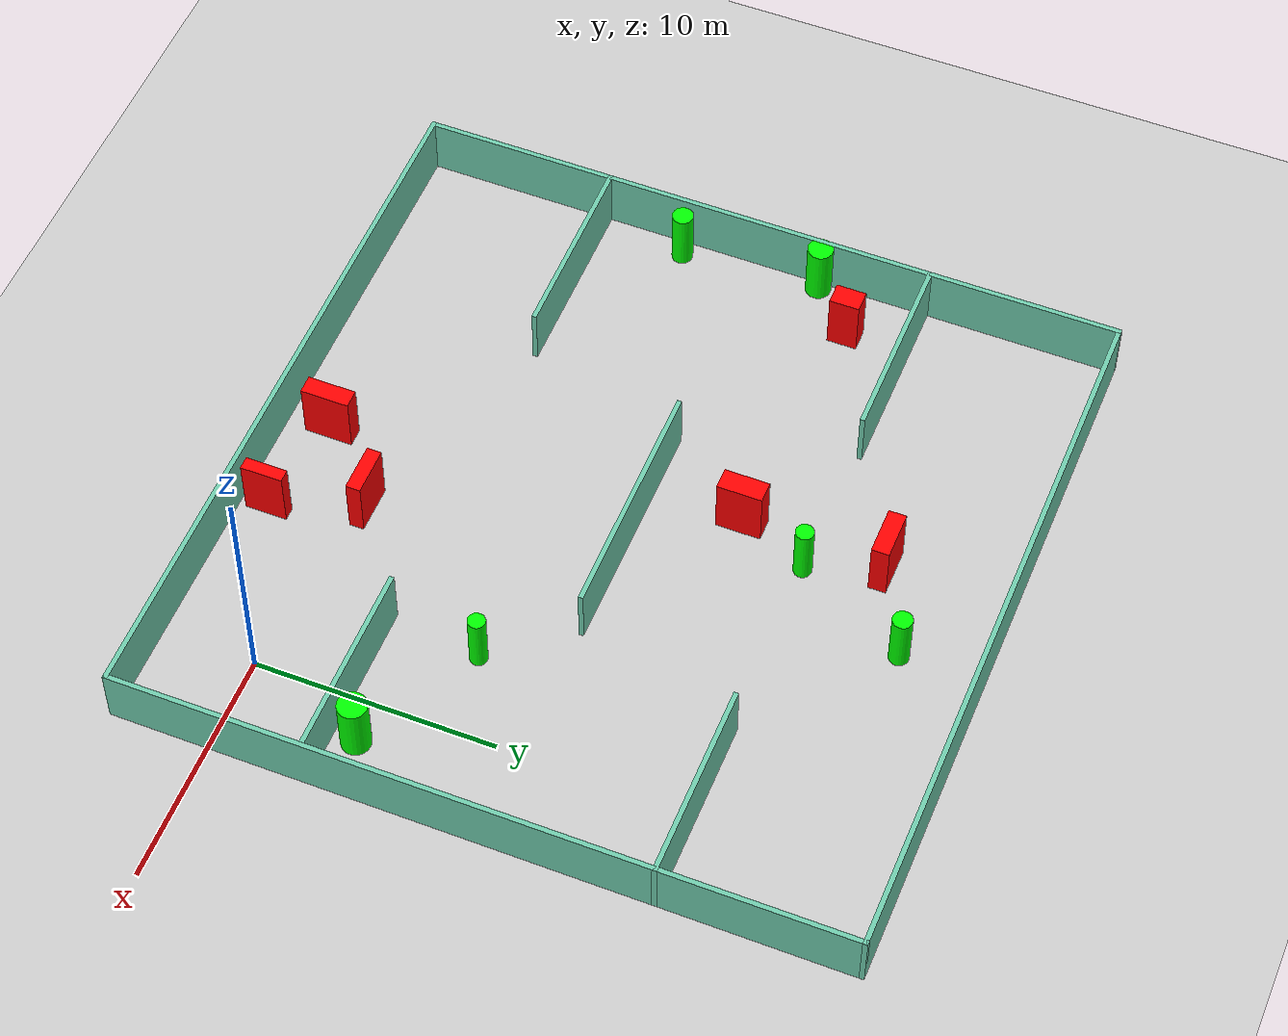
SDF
<sdf version="1.7">
 <world name="default">
  <light name="sun" type="directional">
   <pose>0 0 10 0 -0 0</pose>
   <diffuse>0.8 0.8 0.8 1</diffuse>
   <specular>0.2 0.2 0.2 1</specular>
   <attenuation>
    <range>1000</range>
    <constant>0.9</constant>
    <linear>0.01</linear>
    <quadratic>0.001</quadratic>
   </attenuation>
   <direction>-0.5 0.1 -0.9</direction>
   <spot><inner_angle>0</inner_angle><outer_angle>0</outer_angle><falloff>0</falloff></spot>
  </light>
  <model name="ground_plane">
   <static>1</static>
   <link name="link">
    <collision name="collision">
     <geometry><plane><normal>0 0 1</normal><size>100 100</size></plane></geometry>
     <surface>
      <contact><collide_bitmask>65535</collide_bitmask></contact>
      <friction><ode><mu>100</mu><mu2>50</mu2></ode></friction>
     </surface>
    </collision>
    <visual name="visual">
     <cast_shadows>0</cast_shadows>
     <geometry><plane><normal>0 0 1</normal><size>100 100</size></plane></geometry>
     <material>
      <script><uri>file://media/materials/scripts/gazebo.material</uri><name>Gazebo/Grey</name></script>
     </material>
    </visual>
   </link>
  </model>
  <gravity>0 0 -9.8</gravity>
  <magnetic_field>6e-06 2.3e-05 -4.2e-05</magnetic_field>
  <atmosphere type="adiabatic"/>
  <physics type="ode">
   <max_step_size>0.001</max_step_size>
   <real_time_factor>1</real_time_factor>
   <real_time_update_rate>1000</real_time_update_rate>
  </physics>
  <scene><ambient>0.4 0.4 0.4 1</ambient><background>0.7 0.7 0.7 1</background><shadows>1</shadows></scene>
  <spherical_coordinates>
   <surface_model>EARTH_WGS84</surface_model>
   <latitude_deg>0</latitude_deg>
   <longitude_deg>0</longitude_deg>
   <elevation>0</elevation>
   <heading_deg>0</heading_deg>
  </spherical_coordinates>
  <model name="my_base_walls">
   <link name="Wall_10">
    <collision name="Wall_10_Collision">
     <geometry><box><size>8.2 0.2 2.5</size></box></geometry>
     <pose>0 0 1.25 0 -0 0</pose>
    </collision>
    <visual name="Wall_10_Visual">
     <pose>0 0 1.25 0 -0 0</pose>
     <geometry><box><size>8.2 0.2 2.5</size></box></geometry>
     <material>
      <script><uri>file://media/materials/scripts/gazebo.material</uri><name>Gazebo/Grey</name></script>
      <ambient>0.435294 0.796078 0.67451 1</ambient>
     </material>
     <meta><layer>0</layer></meta>
    </visual>
    <pose>-11 -7 0 0 -0 0</pose>
   </link>
   <link name="Wall_12">
    <collision name="Wall_12_Collision">
     <geometry><box><size>8.2 0.2 2.5</size></box></geometry>
     <pose>0 0 1.25 0 -0 0</pose>
    </collision>
    <visual name="Wall_12_Visual">
     <pose>0 0 1.25 0 -0 0</pose>
     <geometry><box><size>8.2 0.2 2.5</size></box></geometry>
     <material>
      <script><uri>file://media/materials/scripts/gazebo.material</uri><name>Gazebo/Grey</name></script>
      <ambient>0.435294 0.796078 0.67451 1</ambient>
     </material>
     <meta><layer>0</layer></meta>
    </visual>
    <pose>-11 7 0 0 -0 0</pose>
   </link>
   <link name="Wall_14">
    <collision name="Wall_14_Collision">
     <geometry><box><size>8.2 0.2 2.5</size></box></geometry>
     <pose>0 0 1.25 0 -0 0</pose>
    </collision>
    <visual name="Wall_14_Visual">
     <pose>0 0 1.25 0 -0 0</pose>
     <geometry><box><size>8.2 0.2 2.5</size></box></geometry>
     <material>
      <script><uri>file://media/materials/scripts/gazebo.material</uri><name>Gazebo/Grey</name></script>
      <ambient>0.435294 0.796078 0.67451 1</ambient>
     </material>
     <meta><layer>0</layer></meta>
    </visual>
    <pose>11 7 0 0 -0 3.14159</pose>
   </link>
   <link name="Wall_16">
    <collision name="Wall_16_Collision">
     <geometry><box><size>10.2 0.2 2.5</size></box></geometry>
     <pose>0 0 1.25 0 -0 0</pose>
    </collision>
    <visual name="Wall_16_Visual">
     <pose>0 0 1.25 0 -0 0</pose>
     <geometry><box><size>10.2 0.2 2.5</size></box></geometry>
     <material>
      <script><uri>file://media/materials/scripts/gazebo.material</uri><name>Gazebo/Grey</name></script>
      <ambient>0.435294 0.796078 0.67451 1</ambient>
     </material>
     <meta><layer>0</layer></meta>
    </visual>
    <pose>0 0 0 0 -0 3.14159</pose>
   </link>
   <link name="Wall_2">
    <collision name="Wall_2_Collision">
     <geometry><box><size>30.2 0.2 2.5</size></box></geometry>
     <pose>0 0 1.25 0 -0 0</pose>
    </collision>
    <visual name="Wall_2_Visual">
     <pose>0 0 1.25 0 -0 0</pose>
     <geometry><box><size>30.2 0.2 2.5</size></box></geometry>
     <material>
      <script><uri>file://media/materials/scripts/gazebo.material</uri><name>Gazebo/Grey</name></script>
      <ambient>0.435294 0.796078 0.67451 1</ambient>
     </material>
     <meta><layer>0</layer></meta>
    </visual>
    <pose>0 -15 0 0 -0 3.14159</pose>
   </link>
   <link name="Wall_3">
    <collision name="Wall_3_Collision">
     <geometry><box><size>30.2 0.2 2.5</size></box></geometry>
     <pose>0 0 1.25 0 -0 0</pose>
    </collision>
    <visual name="Wall_3_Visual">
     <pose>0 0 1.25 0 -0 0</pose>
     <geometry><box><size>30.2 0.2 2.5</size></box></geometry>
     <material>
      <script><uri>file://media/materials/scripts/gazebo.material</uri><name>Gazebo/Grey</name></script>
      <ambient>0.435294 0.796078 0.67451 1</ambient>
     </material>
     <meta><layer>0</layer></meta>
    </visual>
    <pose>-15 0 0 0 -0 1.5708</pose>
   </link>
   <link name="Wall_4">
    <collision name="Wall_4_Collision">
     <geometry><box><size>30.2 0.2 2.5</size></box></geometry>
     <pose>0 0 1.25 0 -0 0</pose>
    </collision>
    <visual name="Wall_4_Visual">
     <pose>0 0 1.25 0 -0 0</pose>
     <geometry><box><size>30.2 0.2 2.5</size></box></geometry>
     <material>
      <script><uri>file://media/materials/scripts/gazebo.material</uri><name>Gazebo/Grey</name></script>
      <ambient>0.435294 0.796078 0.67451 1</ambient>
     </material>
     <meta><layer>0</layer></meta>
    </visual>
    <pose>0 15 0 0 -0 0</pose>
   </link>
   <link name="Wall_6">
    <collision name="Wall_6_Collision">
     <geometry><box><size>30.2 0.2 2.5</size></box></geometry>
     <pose>0 0 1.25 0 -0 0</pose>
    </collision>
    <visual name="Wall_6_Visual">
     <pose>0 0 1.25 0 -0 0</pose>
     <geometry><box><size>30.2 0.2 2.5</size></box></geometry>
     <material>
      <script><uri>file://media/materials/scripts/gazebo.material</uri><name>Gazebo/Grey</name></script>
      <ambient>0.435294 0.796078 0.67451 1</ambient>
     </material>
     <meta><layer>0</layer></meta>
    </visual>
    <pose>15 0 0 0 -0 1.5708</pose>
   </link>
   <link name="Wall_8">
    <collision name="Wall_8_Collision">
     <geometry><box><size>8.2 0.2 2.5</size></box></geometry>
     <pose>0 0 1.25 0 -0 0</pose>
    </collision>
    <visual name="Wall_8_Visual">
     <pose>0 0 1.25 0 -0 0</pose>
     <geometry><box><size>8.2 0.2 2.5</size></box></geometry>
     <material>
      <script><uri>file://media/materials/scripts/gazebo.material</uri><name>Gazebo/Grey</name></script>
      <ambient>0.435294 0.796078 0.67451 1</ambient>
     </material>
     <meta><layer>0</layer></meta>
    </visual>
    <pose>11 -7 0 0 -0 3.14159</pose>
   </link>
   <static>1</static>
   <pose>-11 11 0 0 -0 0</pose>
  </model>
  <model name="cylinder1">
   <static>1</static>
   <link name="link">
    <inertial>
     <mass>1</mass>
     <inertia><ixx>0.5</ixx><ixy>0</ixy><ixz>0</ixz><iyy>0.5</iyy><iyz>0</iyz><izz>1</izz></inertia>
    </inertial>
    <collision name="collision">
     <geometry><cylinder><radius>0.3774583546543374</radius><length>2.5</length></cylinder></geometry>
    </collision>
    <visual name="visual">
     <geometry><cylinder><radius>0.3774583546543374</radius><length>2.5</length></cylinder></geometry>
     <material>
      <ambient>0 1 0 1</ambient>
      <diffuse>0 1 0 1</diffuse>
      <specular>0.1 0.1 0.1 1</specular>
      <emissive>0 0 0 0</emissive>
     </material>
    </visual>
   </link>
   <pose>-11.956522117506504 17.798434731544276 1.25 0 0 0</pose>
  </model>
  <model name="cylinder2">
   <static>1</static>
   <link name="link">
    <inertial>
     <mass>1</mass>
     <inertia><ixx>0.5</ixx><ixy>0</ixy><ixz>0</ixz><iyy>0.5</iyy><iyz>0</iyz><izz>1</izz></inertia>
    </inertial>
    <collision name="collision">
     <geometry><cylinder><radius>0.36110308508425343</radius><length>2.5</length></cylinder></geometry>
    </collision>
    <visual name="visual">
     <geometry><cylinder><radius>0.36110308508425343</radius><length>2.5</length></cylinder></geometry>
     <material>
      <ambient>0 1 0 1</ambient>
      <diffuse>0 1 0 1</diffuse>
      <specular>0.1 0.1 0.1 1</specular>
      <emissive>0 0 0 0</emissive>
     </material>
    </visual>
   </link>
   <pose>-3.453995969738738 7.785236598017164 1.25 0 0 0</pose>
  </model>
  <model name="cylinder3">
   <static>1</static>
   <link name="link">
    <inertial>
     <mass>1</mass>
     <inertia><ixx>0.5</ixx><ixy>0</ixy><ixz>0</ixz><iyy>0.5</iyy><iyz>0</iyz><izz>1</izz></inertia>
    </inertial>
    <collision name="collision">
     <geometry><cylinder><radius>0.6015408638798115</radius><length>2.5</length></cylinder></geometry>
    </collision>
    <visual name="visual">
     <geometry><cylinder><radius>0.6015408638798115</radius><length>2.5</length></cylinder></geometry>
     <material>
      <ambient>0 1 0 1</ambient>
      <diffuse>0 1 0 1</diffuse>
      <specular>0.1 0.1 0.1 1</specular>
      <emissive>0 0 0 0</emissive>
     </material>
    </visual>
   </link>
   <pose>1.7463731447061654 5.03761686179093 1.25 0 0 0</pose>
  </model>
  <model name="cylinder4">
   <static>1</static>
   <link name="link">
    <inertial>
     <mass>1</mass>
     <inertia><ixx>0.5</ixx><ixy>0</ixy><ixz>0</ixz><iyy>0.5</iyy><iyz>0</iyz><izz>1</izz></inertia>
    </inertial>
    <collision name="collision">
     <geometry><cylinder><radius>0.536053477569751</radius><length>2.5</length></cylinder></geometry>
    </collision>
    <visual name="visual">
     <geometry><cylinder><radius>0.536053477569751</radius><length>2.5</length></cylinder></geometry>
     <material>
      <ambient>0 1 0 1</ambient>
      <diffuse>0 1 0 1</diffuse>
      <specular>0.1 0.1 0.1 1</specular>
      <emissive>0 0 0 0</emissive>
     </material>
    </visual>
   </link>
   <pose>-25.584996215265193 13.436467045491103 1.25 0 0 0</pose>
  </model>
  <model name="cylinder5">
   <static>1</static>
   <link name="link">
    <inertial>
     <mass>1</mass>
     <inertia><ixx>0.5</ixx><ixy>0</ixy><ixz>0</ixz><iyy>0.5</iyy><iyz>0</iyz><izz>1</izz></inertia>
    </inertial>
    <collision name="collision">
     <geometry><cylinder><radius>0.4095598725565943</radius><length>2.5</length></cylinder></geometry>
    </collision>
    <visual name="visual">
     <geometry><cylinder><radius>0.4095598725565943</radius><length>2.5</length></cylinder></geometry>
     <material>
      <ambient>0 1 0 1</ambient>
      <diffuse>0 1 0 1</diffuse>
      <specular>0.1 0.1 0.1 1</specular>
      <emissive>0 0 0 0</emissive>
     </material>
    </visual>
   </link>
   <pose>-9.50532773541428 22.624796102279717 1.25 0 0 0</pose>
  </model>
  <model name="cylinder6">
   <static>1</static>
   <link name="link">
    <inertial>
     <mass>1</mass>
     <inertia><ixx>0.5</ixx><ixy>0</ixy><ixz>0</ixz><iyy>0.5</iyy><iyz>0</iyz><izz>1</izz></inertia>
    </inertial>
    <collision name="collision">
     <geometry><cylinder><radius>0.44295842072780456</radius><length>2.5</length></cylinder></geometry>
    </collision>
    <visual name="visual">
     <geometry><cylinder><radius>0.44295842072780456</radius><length>2.5</length></cylinder></geometry>
     <material>
      <ambient>0 1 0 1</ambient>
      <diffuse>0 1 0 1</diffuse>
      <specular>0.1 0.1 0.1 1</specular>
      <emissive>0 0 0 0</emissive>
     </material>
    </visual>
   </link>
   <pose>-25.158995092337044 7.570048588112783 1.25 0 0 0</pose>
  </model>
  <model name="box1">
   <static>1</static>
   <link name="link">
    <inertial>
     <mass>1</mass>
     <inertia><ixx>0.083</ixx><ixy>0</ixy><ixz>0</ixz><iyy>0.083</iyy><iyz>0</iyz><izz>0.083</izz></inertia>
    </inertial>
    <collision name="collision">
     <geometry><box><size>0.9036217914262581 1.255090756131179 2.5</size></box></geometry>
    </collision>
    <visual name="visual">
     <geometry><box><size>0.9036217914262581 1.255090756131179 2.5</size></box></geometry>
     <material>
      <ambient>1 0 0 1</ambient>
      <diffuse>1 0 0 1</diffuse>
      <specular>0.1 0.1 0.1 1</specular>
      <emissive>0 0 0 0</emissive>
     </material>
    </visual>
    <sensor name="my_contact" type="contact">
     <contact><collision>box_collision</collision><topic>__default_topic__</topic></contact>
    </sensor>
   </link>
   <pose>-23.59265413757695 15.338560874643452 1.25 0 0 0</pose>
  </model>
  <model name="box2">
   <static>1</static>
   <link name="link">
    <inertial>
     <mass>1</mass>
     <inertia><ixx>0.083</ixx><ixy>0</ixy><ixz>0</ixz><iyy>0.083</iyy><iyz>0</iyz><izz>0.083</izz></inertia>
    </inertial>
    <collision name="collision">
     <geometry><box><size>0.8905230480043699 1.8755864800522004 2.5</size></box></geometry>
    </collision>
    <visual name="visual">
     <geometry><box><size>0.8905230480043699 1.8755864800522004 2.5</size></box></geometry>
     <material>
      <ambient>1 0 0 1</ambient>
      <diffuse>1 0 0 1</diffuse>
      <specular>0.1 0.1 0.1 1</specular>
      <emissive>0 0 0 0</emissive>
     </material>
    </visual>
    <sensor name="my_contact" type="contact">
     <contact><collision>box_collision</collision><topic>__default_topic__</topic></contact>
    </sensor>
   </link>
   <pose>-13.165351346793683 14.810178079740759 1.25 0 0 0</pose>
  </model>
  <model name="box3">
   <static>1</static>
   <link name="link">
    <inertial>
     <mass>1</mass>
     <inertia><ixx>0.083</ixx><ixy>0</ixy><ixz>0</ixz><iyy>0.083</iyy><iyz>0</iyz><izz>0.083</izz></inertia>
    </inertial>
    <collision name="collision">
     <geometry><box><size>2.0196525128456937 0.6097824997979506 2.5</size></box></geometry>
    </collision>
    <visual name="visual">
     <geometry><box><size>2.0196525128456937 0.6097824997979506 2.5</size></box></geometry>
     <material>
      <ambient>1 0 0 1</ambient>
      <diffuse>1 0 0 1</diffuse>
      <specular>0.1 0.1 0.1 1</specular>
      <emissive>0 0 0 0</emissive>
     </material>
    </visual>
    <sensor name="my_contact" type="contact">
     <contact><collision>box_collision</collision><topic>__default_topic__</topic></contact>
    </sensor>
   </link>
   <pose>-8.346476247828875 0.8689999687263845 1.25 0 0 0</pose>
  </model>
  <model name="box4">
   <static>1</static>
   <link name="link">
    <inertial>
     <mass>1</mass>
     <inertia><ixx>0.083</ixx><ixy>0</ixy><ixz>0</ixz><iyy>0.083</iyy><iyz>0</iyz><izz>0.083</izz></inertia>
    </inertial>
    <collision name="collision">
     <geometry><box><size>0.7626523101863423 2.0288586357193235 2.5</size></box></geometry>
    </collision>
    <visual name="visual">
     <geometry><box><size>0.7626523101863423 2.0288586357193235 2.5</size></box></geometry>
     <material>
      <ambient>1 0 0 1</ambient>
      <diffuse>1 0 0 1</diffuse>
      <specular>0.1 0.1 0.1 1</specular>
      <emissive>0 0 0 0</emissive>
     </material>
    </visual>
    <sensor name="my_contact" type="contact">
     <contact><collision>box_collision</collision><topic>__default_topic__</topic></contact>
    </sensor>
   </link>
   <pose>-11.33099814108165 -2.040237934416989 1.25 0 0 0</pose>
  </model>
  <model name="box5">
   <static>1</static>
   <link name="link">
    <inertial>
     <mass>1</mass>
     <inertia><ixx>0.083</ixx><ixy>0</ixy><ixz>0</ixz><iyy>0.083</iyy><iyz>0</iyz><izz>0.083</izz></inertia>
    </inertial>
    <collision name="collision">
     <geometry><box><size>0.5366512773815227 1.754679110765487 2.5</size></box></geometry>
    </collision>
    <visual name="visual">
     <geometry><box><size>0.5366512773815227 1.754679110765487 2.5</size></box></geometry>
     <material>
      <ambient>1 0 0 1</ambient>
      <diffuse>1 0 0 1</diffuse>
      <specular>0.1 0.1 0.1 1</specular>
      <emissive>0 0 0 0</emissive>
     </material>
    </visual>
    <sensor name="my_contact" type="contact">
     <contact><collision>box_collision</collision><topic>__default_topic__</topic></contact>
    </sensor>
   </link>
   <pose>-6.895389546199485 -2.7247492174564707 1.25 0 0 0</pose>
  </model>
  <model name="box6">
   <static>1</static>
   <link name="link">
    <inertial>
     <mass>1</mass>
     <inertia><ixx>0.083</ixx><ixy>0</ixy><ixz>0</ixz><iyy>0.083</iyy><iyz>0</iyz><izz>0.083</izz></inertia>
    </inertial>
    <collision name="collision">
     <geometry><box><size>2.0055501713620125 0.7330825453897161 2.5</size></box></geometry>
    </collision>
    <visual name="visual">
     <geometry><box><size>2.0055501713620125 0.7330825453897161 2.5</size></box></geometry>
     <material>
      <ambient>1 0 0 1</ambient>
      <diffuse>1 0 0 1</diffuse>
      <specular>0.1 0.1 0.1 1</specular>
      <emissive>0 0 0 0</emissive>
     </material>
    </visual>
    <sensor name="my_contact" type="contact">
     <contact><collision>box_collision</collision><topic>__default_topic__</topic></contact>
    </sensor>
   </link>
   <pose>-13.128769514865962 20.797675525816405 1.25 0 0 0</pose>
  </model>
 </world>
</sdf>
